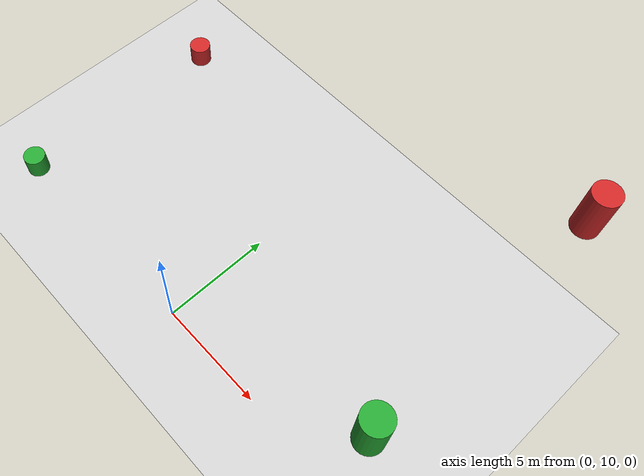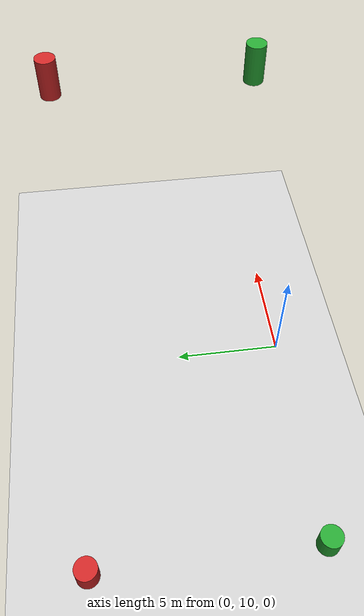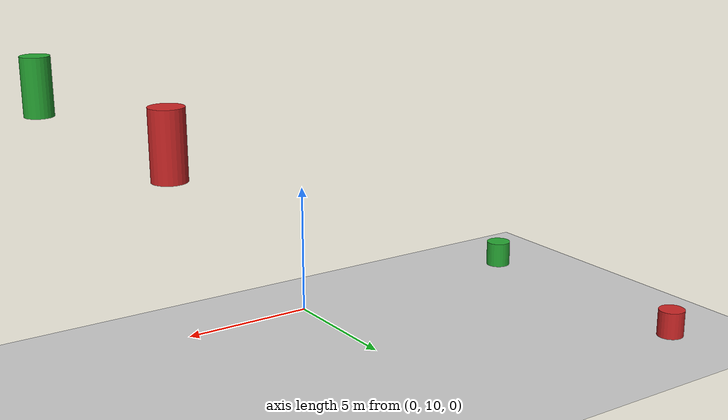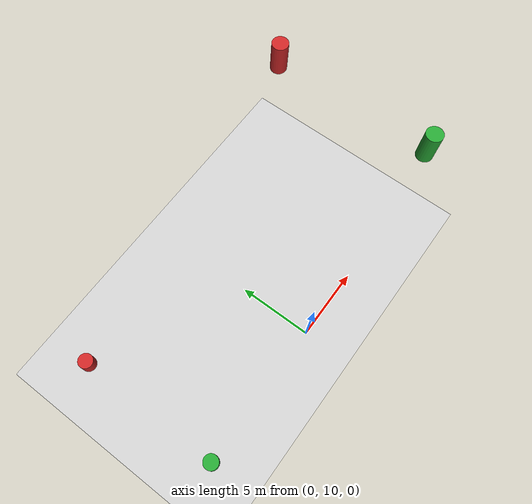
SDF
<sdf version="1.4">
 <world name="lake">
  <scene><sky><clouds><speed>12</speed></clouds></sky></scene>
  <include><uri>model://sun</uri></include>
  <model name="ground_plane">
   <static>1</static>
   <link name="link">
    <collision name="collision">
     <geometry><plane><normal>0 0 1</normal><size>100 100</size></plane></geometry>
     <surface><friction><ode><mu>100</mu><mu2>50</mu2></ode></friction></surface>
    </collision>
    <visual name="visual">
     <transparency>0.9</transparency>
     <geometry><plane><normal>0 0 1</normal><size>100 100</size></plane></geometry>
     <material>
      <script><uri>file://media/materials/scripts/gazebo.material</uri><name>Gazebo/Grey</name></script>
     </material>
    </visual>
    <velocity_decay><linear>0</linear><angular>0</angular></velocity_decay>
   </link>
  </model>
  <include><uri>model://models/buoy_green</uri><pose>-10 10 0 0 0 0</pose><name>buoy1</name></include>
  <include><uri>model://models/buoy_red</uri><pose>-10 20 00 0 0 0</pose></include>
  <include><uri>model://models/buoy_green</uri><pose>10 10 10 0 0 0</pose></include>
  <include><uri>model://models/buoy_red</uri><pose>10 20 10 0 0 0</pose></include>
 </world>
</sdf>

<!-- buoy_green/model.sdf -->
<sdf version="1.4">
  <model name="buoy_green">
    <link name="buoyl">
      <pose>0 0 0 0 0 0</pose>
      <velocity_decay>
        <linear>0.001</linear>
        <angular>0.001</angular>
      </velocity_decay>
      <inertial>
        <pose>0 0 -10 0 0 0</pose>
        <mass>10</mass>
        <inertia>
          <ixx>10</ixx>
          <ixy>0</ixy>
          <ixz>0</ixz>
          <iyy>10</iyy>
          <iyz>0</iyz>
          <izz>10</izz>
        </inertia>
      </inertial>
      <collision name="buoyc">
        <geometry>
          <cylinder>
            <radius>0.5</radius>
            <length>2</length>
          </cylinder>
        </geometry>
      </collision>
      <visual name="buoyv">
        <geometry>
          <cylinder>
            <radius>0.5</radius>
            <length>2</length>
          </cylinder>
        </geometry>
        <material>
          <script>
            <uri>file://media/materials/scripts/gazebo.material</uri>
            <name>Gazebo/Green</name>
          </script>
        </material>
      </visual>
    </link>
    <plugin name="BuoyancyPlugin" filename="libbuoyancy_gazebo_plugin.so">
      <fluid_density>1000</fluid_density>
      <fluid_level>5.0</fluid_level>
      <fluid_drag>10</fluid_drag>
      <link>
        <name>buoyl</name>
        <center_of_volume>0 0 0.5</center_of_volume>
        <area>0.1</area>
        <height>1</height>
      </link>
    </plugin>
  </model>
</sdf>

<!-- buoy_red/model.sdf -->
<sdf version="1.4">
  <model name="buoy_red">
    <link name="buoyl">
      <pose>0 0 0 0 0 0</pose>
      <velocity_decay>
        <linear>0.001</linear>
        <angular>0.001</angular>
      </velocity_decay>
      <inertial>
        <pose>0 0 -10 0 0 0</pose>
        <mass>10</mass>
        <inertia>
          <ixx>10</ixx>
          <ixy>0</ixy>
          <ixz>0</ixz>
          <iyy>10</iyy>
          <iyz>0</iyz>
          <izz>10</izz>
        </inertia>
      </inertial>
      <collision name="buoyc">
        <geometry>
          <cylinder>
            <radius>0.5</radius>
            <length>2.0</length>
          </cylinder>
        </geometry>
      </collision>
      <visual name="buoyv">
        <geometry>
          <cylinder>
            <radius>0.5</radius>
            <length>2.0</length>
          </cylinder>
        </geometry>
        <material>
          <script>
            <uri>file://media/materials/scripts/gazebo.material</uri>
            <name>Gazebo/Red</name>
          </script>
        </material>
      </visual>
    </link>
    <plugin name="BuoyancyPlugin" filename="libbuoyancy_gazebo_plugin.so">
      <fluid_density>1000</fluid_density>
      <fluid_level>5.0</fluid_level>
      <fluid_drag>10</fluid_drag>
      <link>
        <name>buoyl</name>
        <center_of_volume>0 0 0.5</center_of_volume>
        <area>0.1</area>
        <height>1</height>
      </link>
    </plugin>
  </model>
</sdf>
